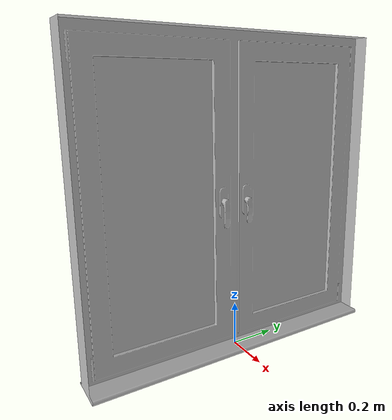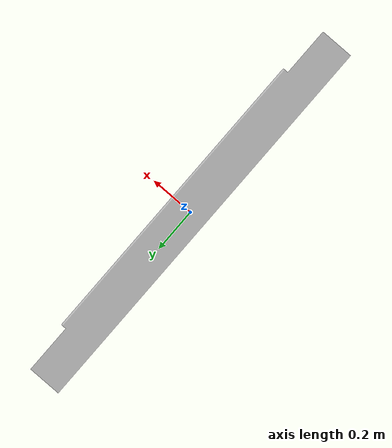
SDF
<?xml version='1.0'?>
<sdf version='1.4'>
  <model name='209'>
    <pose>0 0 0 0 0 0</pose>
    <static>true</static>
    <link name='link'>
      <collision name='collision'>
        <pose>0 0 0 0 0 0</pose>
        <geometry>
          <box>
            <size>0.175 1.4 2</size>
          </box>
        </geometry>
      </collision>
      <visual name='visual'>
        <pose>0 0 0 0 0 0</pose>
        <geometry>
          <mesh><uri>model://209/209.dae</uri></mesh>
        </geometry>
      </visual>
    </link>
  </model>
</sdf>
